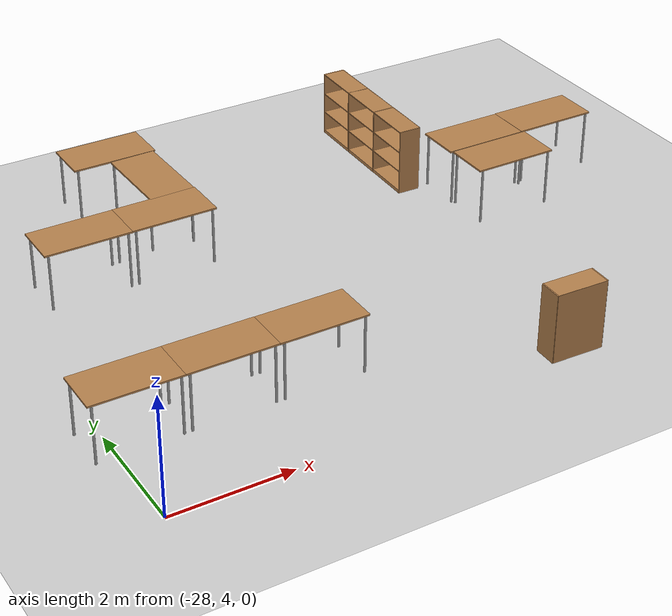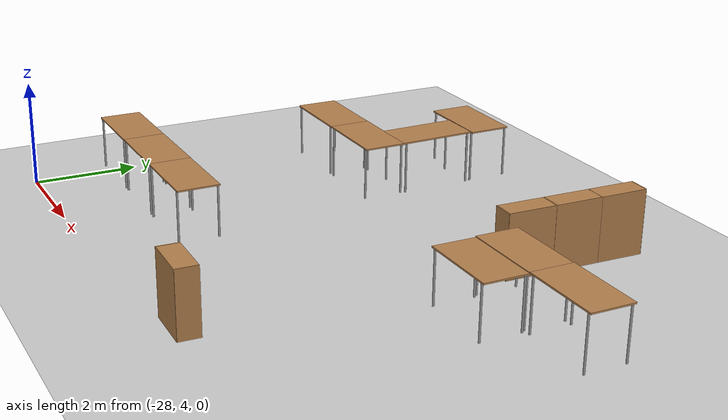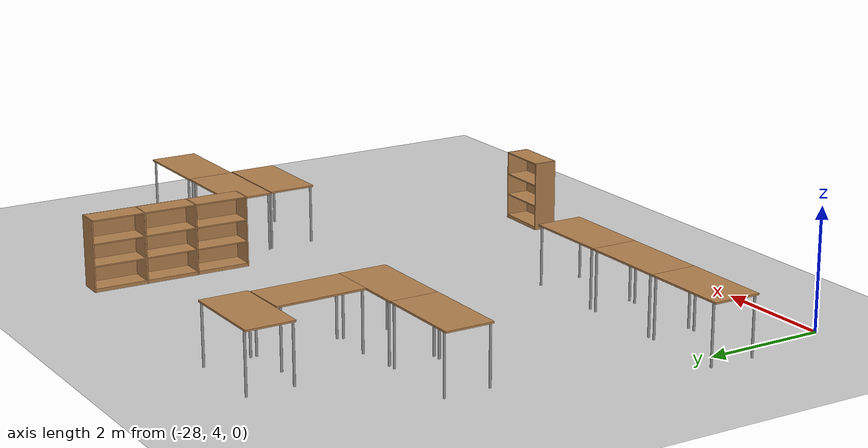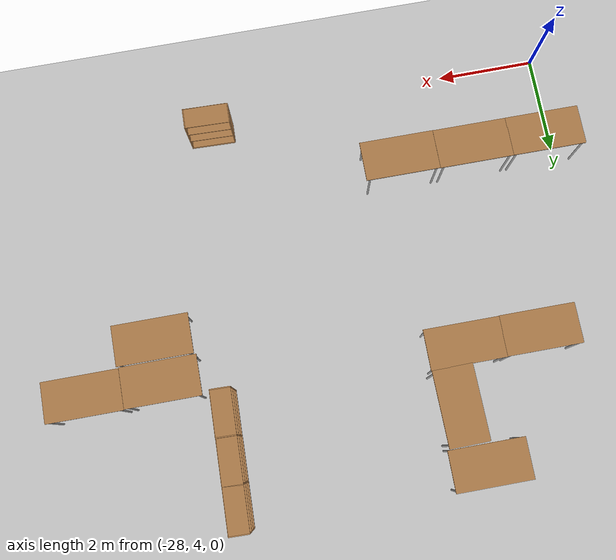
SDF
<sdf version="1.7">
 <world name="default">
  <model name="ground_plane">
   <static>1</static>
   <link name="link">
    <collision name="collision">
     <geometry><plane><normal>0 0 1</normal><size>100 100</size></plane></geometry>
     <surface>
      <contact><collide_bitmask>65535</collide_bitmask></contact>
      <friction><ode><mu>100</mu><mu2>50</mu2></ode></friction>
     </surface>
    </collision>
    <visual name="visual">
     <cast_shadows>0</cast_shadows>
     <geometry><plane><normal>0 0 1</normal><size>100 100</size></plane></geometry>
     <material>
      <script><uri>file://media/materials/scripts/gazebo.material</uri><name>Gazebo/Grey</name></script>
     </material>
    </visual>
   </link>
  </model>
  <model name="table">
   <static>1</static>
   <link name="link">
    <collision name="surface">
     <pose>0 0 1 0 -0 0</pose>
     <geometry><box><size>1.5 0.8 0.03</size></box></geometry>
     <surface><friction><ode><mu>0.6</mu><mu2>0.6</mu2></ode></friction></surface>
    </collision>
    <visual name="visual1">
     <pose>0 0 1 0 -0 0</pose>
     <geometry><box><size>1.5 0.8 0.03</size></box></geometry>
     <material>
      <script><uri>file://media/materials/scripts/gazebo.material</uri><name>Gazebo/Wood</name></script>
     </material>
    </visual>
    <collision name="front_left_leg">
     <pose>0.68 0.38 0.5 0 -0 0</pose>
     <geometry><cylinder><radius>0.02</radius><length>1</length></cylinder></geometry>
    </collision>
    <visual name="front_left_leg">
     <pose>0.68 0.38 0.5 0 -0 0</pose>
     <geometry><cylinder><radius>0.02</radius><length>1</length></cylinder></geometry>
     <material>
      <script><uri>file://media/materials/scripts/gazebo.material</uri><name>Gazebo/Grey</name></script>
     </material>
    </visual>
    <collision name="front_right_leg">
     <pose>0.68 -0.38 0.5 0 -0 0</pose>
     <geometry><cylinder><radius>0.02</radius><length>1</length></cylinder></geometry>
    </collision>
    <visual name="front_right_leg">
     <pose>0.68 -0.38 0.5 0 -0 0</pose>
     <geometry><cylinder><radius>0.02</radius><length>1</length></cylinder></geometry>
     <material>
      <script><uri>file://media/materials/scripts/gazebo.material</uri><name>Gazebo/Grey</name></script>
     </material>
    </visual>
    <collision name="back_right_leg">
     <pose>-0.68 -0.38 0.5 0 -0 0</pose>
     <geometry><cylinder><radius>0.02</radius><length>1</length></cylinder></geometry>
    </collision>
    <visual name="back_right_leg">
     <pose>-0.68 -0.38 0.5 0 -0 0</pose>
     <geometry><cylinder><radius>0.02</radius><length>1</length></cylinder></geometry>
     <material>
      <script><uri>file://media/materials/scripts/gazebo.material</uri><name>Gazebo/Grey</name></script>
     </material>
    </visual>
    <collision name="back_left_leg">
     <pose>-0.68 0.38 0.5 0 -0 0</pose>
     <geometry><cylinder><radius>0.02</radius><length>1</length></cylinder></geometry>
    </collision>
    <visual name="back_left_leg">
     <pose>-0.68 0.38 0.5 0 -0 0</pose>
     <geometry><cylinder><radius>0.02</radius><length>1</length></cylinder></geometry>
     <material>
      <script><uri>file://media/materials/scripts/gazebo.material</uri><name>Gazebo/Grey</name></script>
     </material>
    </visual>
   </link>
   <pose>-19.2474 8.66386 0 0 -0 0</pose>
  </model>
  <model name="table_0">
   <static>1</static>
   <link name="link">
    <collision name="surface">
     <pose>0 0 1 0 -0 0</pose>
     <geometry><box><size>1.5 0.8 0.03</size></box></geometry>
     <surface><friction><ode><mu>0.6</mu><mu2>0.6</mu2></ode></friction></surface>
    </collision>
    <visual name="visual1">
     <pose>0 0 1 0 -0 0</pose>
     <geometry><box><size>1.5 0.8 0.03</size></box></geometry>
     <material>
      <script><uri>file://media/materials/scripts/gazebo.material</uri><name>Gazebo/Wood</name></script>
     </material>
    </visual>
    <collision name="front_left_leg">
     <pose>0.68 0.38 0.5 0 -0 0</pose>
     <geometry><cylinder><radius>0.02</radius><length>1</length></cylinder></geometry>
    </collision>
    <visual name="front_left_leg">
     <pose>0.68 0.38 0.5 0 -0 0</pose>
     <geometry><cylinder><radius>0.02</radius><length>1</length></cylinder></geometry>
     <material>
      <script><uri>file://media/materials/scripts/gazebo.material</uri><name>Gazebo/Grey</name></script>
     </material>
    </visual>
    <collision name="front_right_leg">
     <pose>0.68 -0.38 0.5 0 -0 0</pose>
     <geometry><cylinder><radius>0.02</radius><length>1</length></cylinder></geometry>
    </collision>
    <visual name="front_right_leg">
     <pose>0.68 -0.38 0.5 0 -0 0</pose>
     <geometry><cylinder><radius>0.02</radius><length>1</length></cylinder></geometry>
     <material>
      <script><uri>file://media/materials/scripts/gazebo.material</uri><name>Gazebo/Grey</name></script>
     </material>
    </visual>
    <collision name="back_right_leg">
     <pose>-0.68 -0.38 0.5 0 -0 0</pose>
     <geometry><cylinder><radius>0.02</radius><length>1</length></cylinder></geometry>
    </collision>
    <visual name="back_right_leg">
     <pose>-0.68 -0.38 0.5 0 -0 0</pose>
     <geometry><cylinder><radius>0.02</radius><length>1</length></cylinder></geometry>
     <material>
      <script><uri>file://media/materials/scripts/gazebo.material</uri><name>Gazebo/Grey</name></script>
     </material>
    </visual>
    <collision name="back_left_leg">
     <pose>-0.68 0.38 0.5 0 -0 0</pose>
     <geometry><cylinder><radius>0.02</radius><length>1</length></cylinder></geometry>
    </collision>
    <visual name="back_left_leg">
     <pose>-0.68 0.38 0.5 0 -0 0</pose>
     <geometry><cylinder><radius>0.02</radius><length>1</length></cylinder></geometry>
     <material>
      <script><uri>file://media/materials/scripts/gazebo.material</uri><name>Gazebo/Grey</name></script>
     </material>
    </visual>
   </link>
   <pose>-19.2889 9.4847 -0.00083 0 -0 0</pose>
  </model>
  <model name="table_0_clone_4">
   <static>1</static>
   <link name="link">
    <collision name="surface">
     <pose>0 0 1 0 -0 0</pose>
     <geometry><box><size>1.5 0.8 0.03</size></box></geometry>
     <surface><friction><ode><mu>0.6</mu><mu2>0.6</mu2></ode></friction></surface>
    </collision>
    <visual name="visual1">
     <pose>0 0 1 0 -0 0</pose>
     <geometry><box><size>1.5 0.8 0.03</size></box></geometry>
     <material>
      <script><uri>file://media/materials/scripts/gazebo.material</uri><name>Gazebo/Wood</name></script>
     </material>
    </visual>
    <collision name="front_left_leg">
     <pose>0.68 0.38 0.5 0 -0 0</pose>
     <geometry><cylinder><radius>0.02</radius><length>1</length></cylinder></geometry>
    </collision>
    <visual name="front_left_leg">
     <pose>0.68 0.38 0.5 0 -0 0</pose>
     <geometry><cylinder><radius>0.02</radius><length>1</length></cylinder></geometry>
     <material>
      <script><uri>file://media/materials/scripts/gazebo.material</uri><name>Gazebo/Grey</name></script>
     </material>
    </visual>
    <collision name="front_right_leg">
     <pose>0.68 -0.38 0.5 0 -0 0</pose>
     <geometry><cylinder><radius>0.02</radius><length>1</length></cylinder></geometry>
    </collision>
    <visual name="front_right_leg">
     <pose>0.68 -0.38 0.5 0 -0 0</pose>
     <geometry><cylinder><radius>0.02</radius><length>1</length></cylinder></geometry>
     <material>
      <script><uri>file://media/materials/scripts/gazebo.material</uri><name>Gazebo/Grey</name></script>
     </material>
    </visual>
    <collision name="back_right_leg">
     <pose>-0.68 -0.38 0.5 0 -0 0</pose>
     <geometry><cylinder><radius>0.02</radius><length>1</length></cylinder></geometry>
    </collision>
    <visual name="back_right_leg">
     <pose>-0.68 -0.38 0.5 0 -0 0</pose>
     <geometry><cylinder><radius>0.02</radius><length>1</length></cylinder></geometry>
     <material>
      <script><uri>file://media/materials/scripts/gazebo.material</uri><name>Gazebo/Grey</name></script>
     </material>
    </visual>
    <collision name="back_left_leg">
     <pose>-0.68 0.38 0.5 0 -0 0</pose>
     <geometry><cylinder><radius>0.02</radius><length>1</length></cylinder></geometry>
    </collision>
    <visual name="back_left_leg">
     <pose>-0.68 0.38 0.5 0 -0 0</pose>
     <geometry><cylinder><radius>0.02</radius><length>1</length></cylinder></geometry>
     <material>
      <script><uri>file://media/materials/scripts/gazebo.material</uri><name>Gazebo/Grey</name></script>
     </material>
    </visual>
   </link>
   <pose>-17.7882 9.49595 0 0 -0 0</pose>
  </model>
  <model name="table_2">
   <static>1</static>
   <link name="link">
    <collision name="surface">
     <pose>0 0 1 0 -0 0</pose>
     <geometry><box><size>1.5 0.8 0.03</size></box></geometry>
     <surface><friction><ode><mu>0.6</mu><mu2>0.6</mu2></ode></friction></surface>
    </collision>
    <visual name="visual1">
     <pose>0 0 1 0 -0 0</pose>
     <geometry><box><size>1.5 0.8 0.03</size></box></geometry>
     <material>
      <script><uri>file://media/materials/scripts/gazebo.material</uri><name>Gazebo/Wood</name></script>
     </material>
    </visual>
    <collision name="front_left_leg">
     <pose>0.68 0.38 0.5 0 -0 0</pose>
     <geometry><cylinder><radius>0.02</radius><length>1</length></cylinder></geometry>
    </collision>
    <visual name="front_left_leg">
     <pose>0.68 0.38 0.5 0 -0 0</pose>
     <geometry><cylinder><radius>0.02</radius><length>1</length></cylinder></geometry>
     <material>
      <script><uri>file://media/materials/scripts/gazebo.material</uri><name>Gazebo/Grey</name></script>
     </material>
    </visual>
    <collision name="front_right_leg">
     <pose>0.68 -0.38 0.5 0 -0 0</pose>
     <geometry><cylinder><radius>0.02</radius><length>1</length></cylinder></geometry>
    </collision>
    <visual name="front_right_leg">
     <pose>0.68 -0.38 0.5 0 -0 0</pose>
     <geometry><cylinder><radius>0.02</radius><length>1</length></cylinder></geometry>
     <material>
      <script><uri>file://media/materials/scripts/gazebo.material</uri><name>Gazebo/Grey</name></script>
     </material>
    </visual>
    <collision name="back_right_leg">
     <pose>-0.68 -0.38 0.5 0 -0 0</pose>
     <geometry><cylinder><radius>0.02</radius><length>1</length></cylinder></geometry>
    </collision>
    <visual name="back_right_leg">
     <pose>-0.68 -0.38 0.5 0 -0 0</pose>
     <geometry><cylinder><radius>0.02</radius><length>1</length></cylinder></geometry>
     <material>
      <script><uri>file://media/materials/scripts/gazebo.material</uri><name>Gazebo/Grey</name></script>
     </material>
    </visual>
    <collision name="back_left_leg">
     <pose>-0.68 0.38 0.5 0 -0 0</pose>
     <geometry><cylinder><radius>0.02</radius><length>1</length></cylinder></geometry>
    </collision>
    <visual name="back_left_leg">
     <pose>-0.68 0.38 0.5 0 -0 0</pose>
     <geometry><cylinder><radius>0.02</radius><length>1</length></cylinder></geometry>
     <material>
      <script><uri>file://media/materials/scripts/gazebo.material</uri><name>Gazebo/Grey</name></script>
     </material>
    </visual>
   </link>
   <pose>-26.6345 9.80298 0 0 -0 0</pose>
  </model>
  <model name="table_2_clone">
   <static>1</static>
   <link name="link">
    <collision name="surface">
     <pose>0 0 1 0 -0 0</pose>
     <geometry><box><size>1.5 0.8 0.03</size></box></geometry>
     <surface><friction><ode><mu>0.6</mu><mu2>0.6</mu2></ode></friction></surface>
    </collision>
    <visual name="visual1">
     <pose>0 0 1 0 -0 0</pose>
     <geometry><box><size>1.5 0.8 0.03</size></box></geometry>
     <material>
      <script><uri>file://media/materials/scripts/gazebo.material</uri><name>Gazebo/Wood</name></script>
     </material>
    </visual>
    <collision name="front_left_leg">
     <pose>0.68 0.38 0.5 0 -0 0</pose>
     <geometry><cylinder><radius>0.02</radius><length>1</length></cylinder></geometry>
    </collision>
    <visual name="front_left_leg">
     <pose>0.68 0.38 0.5 0 -0 0</pose>
     <geometry><cylinder><radius>0.02</radius><length>1</length></cylinder></geometry>
     <material>
      <script><uri>file://media/materials/scripts/gazebo.material</uri><name>Gazebo/Grey</name></script>
     </material>
    </visual>
    <collision name="front_right_leg">
     <pose>0.68 -0.38 0.5 0 -0 0</pose>
     <geometry><cylinder><radius>0.02</radius><length>1</length></cylinder></geometry>
    </collision>
    <visual name="front_right_leg">
     <pose>0.68 -0.38 0.5 0 -0 0</pose>
     <geometry><cylinder><radius>0.02</radius><length>1</length></cylinder></geometry>
     <material>
      <script><uri>file://media/materials/scripts/gazebo.material</uri><name>Gazebo/Grey</name></script>
     </material>
    </visual>
    <collision name="back_right_leg">
     <pose>-0.68 -0.38 0.5 0 -0 0</pose>
     <geometry><cylinder><radius>0.02</radius><length>1</length></cylinder></geometry>
    </collision>
    <visual name="back_right_leg">
     <pose>-0.68 -0.38 0.5 0 -0 0</pose>
     <geometry><cylinder><radius>0.02</radius><length>1</length></cylinder></geometry>
     <material>
      <script><uri>file://media/materials/scripts/gazebo.material</uri><name>Gazebo/Grey</name></script>
     </material>
    </visual>
    <collision name="back_left_leg">
     <pose>-0.68 0.38 0.5 0 -0 0</pose>
     <geometry><cylinder><radius>0.02</radius><length>1</length></cylinder></geometry>
    </collision>
    <visual name="back_left_leg">
     <pose>-0.68 0.38 0.5 0 -0 0</pose>
     <geometry><cylinder><radius>0.02</radius><length>1</length></cylinder></geometry>
     <material>
      <script><uri>file://media/materials/scripts/gazebo.material</uri><name>Gazebo/Grey</name></script>
     </material>
    </visual>
   </link>
   <pose>-25.1404 9.80911 0 0 -0 0</pose>
  </model>
  <model name="table_2_clone_0">
   <static>1</static>
   <link name="link">
    <collision name="surface">
     <pose>0 0 1 0 -0 0</pose>
     <geometry><box><size>1.5 0.8 0.03</size></box></geometry>
     <surface><friction><ode><mu>0.6</mu><mu2>0.6</mu2></ode></friction></surface>
    </collision>
    <visual name="visual1">
     <pose>0 0 1 0 -0 0</pose>
     <geometry><box><size>1.5 0.8 0.03</size></box></geometry>
     <material>
      <script><uri>file://media/materials/scripts/gazebo.material</uri><name>Gazebo/Wood</name></script>
     </material>
    </visual>
    <collision name="front_left_leg">
     <pose>0.68 0.38 0.5 0 -0 0</pose>
     <geometry><cylinder><radius>0.02</radius><length>1</length></cylinder></geometry>
    </collision>
    <visual name="front_left_leg">
     <pose>0.68 0.38 0.5 0 -0 0</pose>
     <geometry><cylinder><radius>0.02</radius><length>1</length></cylinder></geometry>
     <material>
      <script><uri>file://media/materials/scripts/gazebo.material</uri><name>Gazebo/Grey</name></script>
     </material>
    </visual>
    <collision name="front_right_leg">
     <pose>0.68 -0.38 0.5 0 -0 0</pose>
     <geometry><cylinder><radius>0.02</radius><length>1</length></cylinder></geometry>
    </collision>
    <visual name="front_right_leg">
     <pose>0.68 -0.38 0.5 0 -0 0</pose>
     <geometry><cylinder><radius>0.02</radius><length>1</length></cylinder></geometry>
     <material>
      <script><uri>file://media/materials/scripts/gazebo.material</uri><name>Gazebo/Grey</name></script>
     </material>
    </visual>
    <collision name="back_right_leg">
     <pose>-0.68 -0.38 0.5 0 -0 0</pose>
     <geometry><cylinder><radius>0.02</radius><length>1</length></cylinder></geometry>
    </collision>
    <visual name="back_right_leg">
     <pose>-0.68 -0.38 0.5 0 -0 0</pose>
     <geometry><cylinder><radius>0.02</radius><length>1</length></cylinder></geometry>
     <material>
      <script><uri>file://media/materials/scripts/gazebo.material</uri><name>Gazebo/Grey</name></script>
     </material>
    </visual>
    <collision name="back_left_leg">
     <pose>-0.68 0.38 0.5 0 -0 0</pose>
     <geometry><cylinder><radius>0.02</radius><length>1</length></cylinder></geometry>
    </collision>
    <visual name="back_left_leg">
     <pose>-0.68 0.38 0.5 0 -0 0</pose>
     <geometry><cylinder><radius>0.02</radius><length>1</length></cylinder></geometry>
     <material>
      <script><uri>file://media/materials/scripts/gazebo.material</uri><name>Gazebo/Grey</name></script>
     </material>
    </visual>
   </link>
   <pose>-24.8153 10.9521 0 0 0 -1.55215</pose>
  </model>
  <model name="table_2_clone_1">
   <static>1</static>
   <link name="link">
    <collision name="surface">
     <pose>0 0 1 0 -0 0</pose>
     <geometry><box><size>1.5 0.8 0.03</size></box></geometry>
     <surface><friction><ode><mu>0.6</mu><mu2>0.6</mu2></ode></friction></surface>
    </collision>
    <visual name="visual1">
     <pose>0 0 1 0 -0 0</pose>
     <geometry><box><size>1.5 0.8 0.03</size></box></geometry>
     <material>
      <script><uri>file://media/materials/scripts/gazebo.material</uri><name>Gazebo/Wood</name></script>
     </material>
    </visual>
    <collision name="front_left_leg">
     <pose>0.68 0.38 0.5 0 -0 0</pose>
     <geometry><cylinder><radius>0.02</radius><length>1</length></cylinder></geometry>
    </collision>
    <visual name="front_left_leg">
     <pose>0.68 0.38 0.5 0 -0 0</pose>
     <geometry><cylinder><radius>0.02</radius><length>1</length></cylinder></geometry>
     <material>
      <script><uri>file://media/materials/scripts/gazebo.material</uri><name>Gazebo/Grey</name></script>
     </material>
    </visual>
    <collision name="front_right_leg">
     <pose>0.68 -0.38 0.5 0 -0 0</pose>
     <geometry><cylinder><radius>0.02</radius><length>1</length></cylinder></geometry>
    </collision>
    <visual name="front_right_leg">
     <pose>0.68 -0.38 0.5 0 -0 0</pose>
     <geometry><cylinder><radius>0.02</radius><length>1</length></cylinder></geometry>
     <material>
      <script><uri>file://media/materials/scripts/gazebo.material</uri><name>Gazebo/Grey</name></script>
     </material>
    </visual>
    <collision name="back_right_leg">
     <pose>-0.68 -0.38 0.5 0 -0 0</pose>
     <geometry><cylinder><radius>0.02</radius><length>1</length></cylinder></geometry>
    </collision>
    <visual name="back_right_leg">
     <pose>-0.68 -0.38 0.5 0 -0 0</pose>
     <geometry><cylinder><radius>0.02</radius><length>1</length></cylinder></geometry>
     <material>
      <script><uri>file://media/materials/scripts/gazebo.material</uri><name>Gazebo/Grey</name></script>
     </material>
    </visual>
    <collision name="back_left_leg">
     <pose>-0.68 0.38 0.5 0 -0 0</pose>
     <geometry><cylinder><radius>0.02</radius><length>1</length></cylinder></geometry>
    </collision>
    <visual name="back_left_leg">
     <pose>-0.68 0.38 0.5 0 -0 0</pose>
     <geometry><cylinder><radius>0.02</radius><length>1</length></cylinder></geometry>
     <material>
      <script><uri>file://media/materials/scripts/gazebo.material</uri><name>Gazebo/Grey</name></script>
     </material>
    </visual>
   </link>
   <pose>-25.1335 12.1209 0 0 -0 0</pose>
  </model>
  <model name="table_3">
   <static>1</static>
   <link name="link">
    <collision name="surface">
     <pose>0 0 1 0 -0 0</pose>
     <geometry><box><size>1.5 0.8 0.03</size></box></geometry>
     <surface><friction><ode><mu>0.6</mu><mu2>0.6</mu2></ode></friction></surface>
    </collision>
    <visual name="visual1">
     <pose>0 0 1 0 -0 0</pose>
     <geometry><box><size>1.5 0.8 0.03</size></box></geometry>
     <material>
      <script><uri>file://media/materials/scripts/gazebo.material</uri><name>Gazebo/Wood</name></script>
     </material>
    </visual>
    <collision name="front_left_leg">
     <pose>0.68 0.38 0.5 0 -0 0</pose>
     <geometry><cylinder><radius>0.02</radius><length>1</length></cylinder></geometry>
    </collision>
    <visual name="front_left_leg">
     <pose>0.68 0.38 0.5 0 -0 0</pose>
     <geometry><cylinder><radius>0.02</radius><length>1</length></cylinder></geometry>
     <material>
      <script><uri>file://media/materials/scripts/gazebo.material</uri><name>Gazebo/Grey</name></script>
     </material>
    </visual>
    <collision name="front_right_leg">
     <pose>0.68 -0.38 0.5 0 -0 0</pose>
     <geometry><cylinder><radius>0.02</radius><length>1</length></cylinder></geometry>
    </collision>
    <visual name="front_right_leg">
     <pose>0.68 -0.38 0.5 0 -0 0</pose>
     <geometry><cylinder><radius>0.02</radius><length>1</length></cylinder></geometry>
     <material>
      <script><uri>file://media/materials/scripts/gazebo.material</uri><name>Gazebo/Grey</name></script>
     </material>
    </visual>
    <collision name="back_right_leg">
     <pose>-0.68 -0.38 0.5 0 -0 0</pose>
     <geometry><cylinder><radius>0.02</radius><length>1</length></cylinder></geometry>
    </collision>
    <visual name="back_right_leg">
     <pose>-0.68 -0.38 0.5 0 -0 0</pose>
     <geometry><cylinder><radius>0.02</radius><length>1</length></cylinder></geometry>
     <material>
      <script><uri>file://media/materials/scripts/gazebo.material</uri><name>Gazebo/Grey</name></script>
     </material>
    </visual>
    <collision name="back_left_leg">
     <pose>-0.68 0.38 0.5 0 -0 0</pose>
     <geometry><cylinder><radius>0.02</radius><length>1</length></cylinder></geometry>
    </collision>
    <visual name="back_left_leg">
     <pose>-0.68 0.38 0.5 0 -0 0</pose>
     <geometry><cylinder><radius>0.02</radius><length>1</length></cylinder></geometry>
     <material>
      <script><uri>file://media/materials/scripts/gazebo.material</uri><name>Gazebo/Grey</name></script>
     </material>
    </visual>
   </link>
   <pose>-27.6413 5.8837 0 0 -0 0</pose>
  </model>
  <model name="table_4">
   <static>1</static>
   <link name="link">
    <collision name="surface">
     <pose>0 0 1 0 -0 0</pose>
     <geometry><box><size>1.5 0.8 0.03</size></box></geometry>
     <surface><friction><ode><mu>0.6</mu><mu2>0.6</mu2></ode></friction></surface>
    </collision>
    <visual name="visual1">
     <pose>0 0 1 0 -0 0</pose>
     <geometry><box><size>1.5 0.8 0.03</size></box></geometry>
     <material>
      <script><uri>file://media/materials/scripts/gazebo.material</uri><name>Gazebo/Wood</name></script>
     </material>
    </visual>
    <collision name="front_left_leg">
     <pose>0.68 0.38 0.5 0 -0 0</pose>
     <geometry><cylinder><radius>0.02</radius><length>1</length></cylinder></geometry>
    </collision>
    <visual name="front_left_leg">
     <pose>0.68 0.38 0.5 0 -0 0</pose>
     <geometry><cylinder><radius>0.02</radius><length>1</length></cylinder></geometry>
     <material>
      <script><uri>file://media/materials/scripts/gazebo.material</uri><name>Gazebo/Grey</name></script>
     </material>
    </visual>
    <collision name="front_right_leg">
     <pose>0.68 -0.38 0.5 0 -0 0</pose>
     <geometry><cylinder><radius>0.02</radius><length>1</length></cylinder></geometry>
    </collision>
    <visual name="front_right_leg">
     <pose>0.68 -0.38 0.5 0 -0 0</pose>
     <geometry><cylinder><radius>0.02</radius><length>1</length></cylinder></geometry>
     <material>
      <script><uri>file://media/materials/scripts/gazebo.material</uri><name>Gazebo/Grey</name></script>
     </material>
    </visual>
    <collision name="back_right_leg">
     <pose>-0.68 -0.38 0.5 0 -0 0</pose>
     <geometry><cylinder><radius>0.02</radius><length>1</length></cylinder></geometry>
    </collision>
    <visual name="back_right_leg">
     <pose>-0.68 -0.38 0.5 0 -0 0</pose>
     <geometry><cylinder><radius>0.02</radius><length>1</length></cylinder></geometry>
     <material>
      <script><uri>file://media/materials/scripts/gazebo.material</uri><name>Gazebo/Grey</name></script>
     </material>
    </visual>
    <collision name="back_left_leg">
     <pose>-0.68 0.38 0.5 0 -0 0</pose>
     <geometry><cylinder><radius>0.02</radius><length>1</length></cylinder></geometry>
    </collision>
    <visual name="back_left_leg">
     <pose>-0.68 0.38 0.5 0 -0 0</pose>
     <geometry><cylinder><radius>0.02</radius><length>1</length></cylinder></geometry>
     <material>
      <script><uri>file://media/materials/scripts/gazebo.material</uri><name>Gazebo/Grey</name></script>
     </material>
    </visual>
   </link>
   <pose>-26.1516 5.88507 0 0 -0 0</pose>
  </model>
  <model name="table_5">
   <static>1</static>
   <link name="link">
    <collision name="surface">
     <pose>0 0 1 0 -0 0</pose>
     <geometry><box><size>1.5 0.8 0.03</size></box></geometry>
     <surface><friction><ode><mu>0.6</mu><mu2>0.6</mu2></ode></friction></surface>
    </collision>
    <visual name="visual1">
     <pose>0 0 1 0 -0 0</pose>
     <geometry><box><size>1.5 0.8 0.03</size></box></geometry>
     <material>
      <script><uri>file://media/materials/scripts/gazebo.material</uri><name>Gazebo/Wood</name></script>
     </material>
    </visual>
    <collision name="front_left_leg">
     <pose>0.68 0.38 0.5 0 -0 0</pose>
     <geometry><cylinder><radius>0.02</radius><length>1</length></cylinder></geometry>
    </collision>
    <visual name="front_left_leg">
     <pose>0.68 0.38 0.5 0 -0 0</pose>
     <geometry><cylinder><radius>0.02</radius><length>1</length></cylinder></geometry>
     <material>
      <script><uri>file://media/materials/scripts/gazebo.material</uri><name>Gazebo/Grey</name></script>
     </material>
    </visual>
    <collision name="front_right_leg">
     <pose>0.68 -0.38 0.5 0 -0 0</pose>
     <geometry><cylinder><radius>0.02</radius><length>1</length></cylinder></geometry>
    </collision>
    <visual name="front_right_leg">
     <pose>0.68 -0.38 0.5 0 -0 0</pose>
     <geometry><cylinder><radius>0.02</radius><length>1</length></cylinder></geometry>
     <material>
      <script><uri>file://media/materials/scripts/gazebo.material</uri><name>Gazebo/Grey</name></script>
     </material>
    </visual>
    <collision name="back_right_leg">
     <pose>-0.68 -0.38 0.5 0 -0 0</pose>
     <geometry><cylinder><radius>0.02</radius><length>1</length></cylinder></geometry>
    </collision>
    <visual name="back_right_leg">
     <pose>-0.68 -0.38 0.5 0 -0 0</pose>
     <geometry><cylinder><radius>0.02</radius><length>1</length></cylinder></geometry>
     <material>
      <script><uri>file://media/materials/scripts/gazebo.material</uri><name>Gazebo/Grey</name></script>
     </material>
    </visual>
    <collision name="back_left_leg">
     <pose>-0.68 0.38 0.5 0 -0 0</pose>
     <geometry><cylinder><radius>0.02</radius><length>1</length></cylinder></geometry>
    </collision>
    <visual name="back_left_leg">
     <pose>-0.68 0.38 0.5 0 -0 0</pose>
     <geometry><cylinder><radius>0.02</radius><length>1</length></cylinder></geometry>
     <material>
      <script><uri>file://media/materials/scripts/gazebo.material</uri><name>Gazebo/Grey</name></script>
     </material>
    </visual>
   </link>
   <pose>-24.6509 5.88052 0 0 -0 0</pose>
  </model>
  <model name="bookshelf_clone_7">
   <static>1</static>
   <link name="link">
    <inertial><mass>1</mass></inertial>
    <collision name="back">
     <pose>0 0.005 0.6 0 -0 0</pose>
     <geometry><box><size>0.9 0.01 1.2</size></box></geometry>
    </collision>
    <visual name="visual1">
     <pose>0 0.005 0.6 0 -0 0</pose>
     <geometry><box><size>0.9 0.01 1.2</size></box></geometry>
     <material>
      <script><uri>file://media/materials/scripts/gazebo.material</uri><name>Gazebo/Wood</name></script>
     </material>
    </visual>
    <collision name="left_side">
     <pose>0.45 -0.195 0.6 0 -0 0</pose>
     <geometry><box><size>0.02 0.4 1.2</size></box></geometry>
    </collision>
    <visual name="visual2">
     <pose>0.45 -0.195 0.6 0 -0 0</pose>
     <geometry><box><size>0.02 0.4 1.2</size></box></geometry>
     <material>
      <script><uri>file://media/materials/scripts/gazebo.material</uri><name>Gazebo/Wood</name></script>
     </material>
    </visual>
    <collision name="right_side">
     <pose>-0.45 -0.195 0.6 0 -0 0</pose>
     <geometry><box><size>0.02 0.4 1.2</size></box></geometry>
    </collision>
    <visual name="visual3">
     <pose>-0.45 -0.195 0.6 0 -0 0</pose>
     <geometry><box><size>0.02 0.4 1.2</size></box></geometry>
     <material>
      <script><uri>file://media/materials/scripts/gazebo.material</uri><name>Gazebo/Wood</name></script>
     </material>
    </visual>
    <collision name="bottom">
     <pose>0 -0.195 0.03 0 -0 0</pose>
     <geometry><box><size>0.88 0.4 0.06</size></box></geometry>
    </collision>
    <visual name="visual4">
     <pose>0 -0.195 0.03 0 -0 0</pose>
     <geometry><box><size>0.88 0.4 0.06</size></box></geometry>
     <material>
      <script><uri>file://media/materials/scripts/gazebo.material</uri><name>Gazebo/Wood</name></script>
     </material>
    </visual>
    <collision name="top">
     <pose>0 -0.195 1.19 0 -0 0</pose>
     <geometry><box><size>0.88 0.4 0.02</size></box></geometry>
    </collision>
    <visual name="visual5">
     <pose>0 -0.195 1.19 0 -0 0</pose>
     <geometry><box><size>0.88 0.4 0.02</size></box></geometry>
     <material>
      <script><uri>file://media/materials/scripts/gazebo.material</uri><name>Gazebo/Wood</name></script>
     </material>
    </visual>
    <collision name="low_shelf">
     <pose>0 -0.195 0.43 0 -0 0</pose>
     <geometry><box><size>0.88 0.4 0.02</size></box></geometry>
    </collision>
    <visual name="visual6">
     <pose>0 -0.195 0.43 0 -0 0</pose>
     <geometry><box><size>0.88 0.4 0.02</size></box></geometry>
     <material>
      <script><uri>file://media/materials/scripts/gazebo.material</uri><name>Gazebo/Wood</name></script>
     </material>
    </visual>
    <collision name="high_shelf">
     <pose>0 -0.195 0.8 0 -0 0</pose>
     <geometry><box><size>0.88 0.4 0.02</size></box></geometry>
    </collision>
    <visual name="visual7">
     <pose>0 -0.195 0.8 0 -0 0</pose>
     <geometry><box><size>0.88 0.4 0.02</size></box></geometry>
     <material>
      <script><uri>file://media/materials/scripts/gazebo.material</uri><name>Gazebo/Wood</name></script>
     </material>
    </visual>
   </link>
   <pose>-20.1504 12.059 0 0 0 -1.59679</pose>
  </model>
  <model name="bookshelf_clone_7_clone">
   <static>1</static>
   <link name="link">
    <inertial><mass>1</mass></inertial>
    <collision name="back">
     <pose>0 0.005 0.6 0 -0 0</pose>
     <geometry><box><size>0.9 0.01 1.2</size></box></geometry>
    </collision>
    <visual name="visual1">
     <pose>0 0.005 0.6 0 -0 0</pose>
     <geometry><box><size>0.9 0.01 1.2</size></box></geometry>
     <material>
      <script><uri>file://media/materials/scripts/gazebo.material</uri><name>Gazebo/Wood</name></script>
     </material>
    </visual>
    <collision name="left_side">
     <pose>0.45 -0.195 0.6 0 -0 0</pose>
     <geometry><box><size>0.02 0.4 1.2</size></box></geometry>
    </collision>
    <visual name="visual2">
     <pose>0.45 -0.195 0.6 0 -0 0</pose>
     <geometry><box><size>0.02 0.4 1.2</size></box></geometry>
     <material>
      <script><uri>file://media/materials/scripts/gazebo.material</uri><name>Gazebo/Wood</name></script>
     </material>
    </visual>
    <collision name="right_side">
     <pose>-0.45 -0.195 0.6 0 -0 0</pose>
     <geometry><box><size>0.02 0.4 1.2</size></box></geometry>
    </collision>
    <visual name="visual3">
     <pose>-0.45 -0.195 0.6 0 -0 0</pose>
     <geometry><box><size>0.02 0.4 1.2</size></box></geometry>
     <material>
      <script><uri>file://media/materials/scripts/gazebo.material</uri><name>Gazebo/Wood</name></script>
     </material>
    </visual>
    <collision name="bottom">
     <pose>0 -0.195 0.03 0 -0 0</pose>
     <geometry><box><size>0.88 0.4 0.06</size></box></geometry>
    </collision>
    <visual name="visual4">
     <pose>0 -0.195 0.03 0 -0 0</pose>
     <geometry><box><size>0.88 0.4 0.06</size></box></geometry>
     <material>
      <script><uri>file://media/materials/scripts/gazebo.material</uri><name>Gazebo/Wood</name></script>
     </material>
    </visual>
    <collision name="top">
     <pose>0 -0.195 1.19 0 -0 0</pose>
     <geometry><box><size>0.88 0.4 0.02</size></box></geometry>
    </collision>
    <visual name="visual5">
     <pose>0 -0.195 1.19 0 -0 0</pose>
     <geometry><box><size>0.88 0.4 0.02</size></box></geometry>
     <material>
      <script><uri>file://media/materials/scripts/gazebo.material</uri><name>Gazebo/Wood</name></script>
     </material>
    </visual>
    <collision name="low_shelf">
     <pose>0 -0.195 0.43 0 -0 0</pose>
     <geometry><box><size>0.88 0.4 0.02</size></box></geometry>
    </collision>
    <visual name="visual6">
     <pose>0 -0.195 0.43 0 -0 0</pose>
     <geometry><box><size>0.88 0.4 0.02</size></box></geometry>
     <material>
      <script><uri>file://media/materials/scripts/gazebo.material</uri><name>Gazebo/Wood</name></script>
     </material>
    </visual>
    <collision name="high_shelf">
     <pose>0 -0.195 0.8 0 -0 0</pose>
     <geometry><box><size>0.88 0.4 0.02</size></box></geometry>
    </collision>
    <visual name="visual7">
     <pose>0 -0.195 0.8 0 -0 0</pose>
     <geometry><box><size>0.88 0.4 0.02</size></box></geometry>
     <material>
      <script><uri>file://media/materials/scripts/gazebo.material</uri><name>Gazebo/Wood</name></script>
     </material>
    </visual>
   </link>
   <pose>-20.1721 11.176 0 0 0 -1.59679</pose>
  </model>
  <model name="bookshelf_clone_7_clone_0">
   <static>1</static>
   <link name="link">
    <inertial><mass>1</mass></inertial>
    <collision name="back">
     <pose>0 0.005 0.6 0 -0 0</pose>
     <geometry><box><size>0.9 0.01 1.2</size></box></geometry>
    </collision>
    <visual name="visual1">
     <pose>0 0.005 0.6 0 -0 0</pose>
     <geometry><box><size>0.9 0.01 1.2</size></box></geometry>
     <material>
      <script><uri>file://media/materials/scripts/gazebo.material</uri><name>Gazebo/Wood</name></script>
     </material>
    </visual>
    <collision name="left_side">
     <pose>0.45 -0.195 0.6 0 -0 0</pose>
     <geometry><box><size>0.02 0.4 1.2</size></box></geometry>
    </collision>
    <visual name="visual2">
     <pose>0.45 -0.195 0.6 0 -0 0</pose>
     <geometry><box><size>0.02 0.4 1.2</size></box></geometry>
     <material>
      <script><uri>file://media/materials/scripts/gazebo.material</uri><name>Gazebo/Wood</name></script>
     </material>
    </visual>
    <collision name="right_side">
     <pose>-0.45 -0.195 0.6 0 -0 0</pose>
     <geometry><box><size>0.02 0.4 1.2</size></box></geometry>
    </collision>
    <visual name="visual3">
     <pose>-0.45 -0.195 0.6 0 -0 0</pose>
     <geometry><box><size>0.02 0.4 1.2</size></box></geometry>
     <material>
      <script><uri>file://media/materials/scripts/gazebo.material</uri><name>Gazebo/Wood</name></script>
     </material>
    </visual>
    <collision name="bottom">
     <pose>0 -0.195 0.03 0 -0 0</pose>
     <geometry><box><size>0.88 0.4 0.06</size></box></geometry>
    </collision>
    <visual name="visual4">
     <pose>0 -0.195 0.03 0 -0 0</pose>
     <geometry><box><size>0.88 0.4 0.06</size></box></geometry>
     <material>
      <script><uri>file://media/materials/scripts/gazebo.material</uri><name>Gazebo/Wood</name></script>
     </material>
    </visual>
    <collision name="top">
     <pose>0 -0.195 1.19 0 -0 0</pose>
     <geometry><box><size>0.88 0.4 0.02</size></box></geometry>
    </collision>
    <visual name="visual5">
     <pose>0 -0.195 1.19 0 -0 0</pose>
     <geometry><box><size>0.88 0.4 0.02</size></box></geometry>
     <material>
      <script><uri>file://media/materials/scripts/gazebo.material</uri><name>Gazebo/Wood</name></script>
     </material>
    </visual>
    <collision name="low_shelf">
     <pose>0 -0.195 0.43 0 -0 0</pose>
     <geometry><box><size>0.88 0.4 0.02</size></box></geometry>
    </collision>
    <visual name="visual6">
     <pose>0 -0.195 0.43 0 -0 0</pose>
     <geometry><box><size>0.88 0.4 0.02</size></box></geometry>
     <material>
      <script><uri>file://media/materials/scripts/gazebo.material</uri><name>Gazebo/Wood</name></script>
     </material>
    </visual>
    <collision name="high_shelf">
     <pose>0 -0.195 0.8 0 -0 0</pose>
     <geometry><box><size>0.88 0.4 0.02</size></box></geometry>
    </collision>
    <visual name="visual7">
     <pose>0 -0.195 0.8 0 -0 0</pose>
     <geometry><box><size>0.88 0.4 0.02</size></box></geometry>
     <material>
      <script><uri>file://media/materials/scripts/gazebo.material</uri><name>Gazebo/Wood</name></script>
     </material>
    </visual>
   </link>
   <pose>-20.1926 10.2709 0 0 0 -1.59679</pose>
  </model>
  <model name="bookshelf_clone_clone">
   <static>1</static>
   <link name="link">
    <inertial><mass>1</mass></inertial>
    <collision name="back">
     <pose>0 0.005 0.6 0 -0 0</pose>
     <geometry><box><size>0.9 0.01 1.2</size></box></geometry>
    </collision>
    <visual name="visual1">
     <pose>0 0.005 0.6 0 -0 0</pose>
     <geometry><box><size>0.9 0.01 1.2</size></box></geometry>
     <material>
      <script><uri>file://media/materials/scripts/gazebo.material</uri><name>Gazebo/Wood</name></script>
     </material>
    </visual>
    <collision name="left_side">
     <pose>0.45 -0.195 0.6 0 -0 0</pose>
     <geometry><box><size>0.02 0.4 1.2</size></box></geometry>
    </collision>
    <visual name="visual2">
     <pose>0.45 -0.195 0.6 0 -0 0</pose>
     <geometry><box><size>0.02 0.4 1.2</size></box></geometry>
     <material>
      <script><uri>file://media/materials/scripts/gazebo.material</uri><name>Gazebo/Wood</name></script>
     </material>
    </visual>
    <collision name="right_side">
     <pose>-0.45 -0.195 0.6 0 -0 0</pose>
     <geometry><box><size>0.02 0.4 1.2</size></box></geometry>
    </collision>
    <visual name="visual3">
     <pose>-0.45 -0.195 0.6 0 -0 0</pose>
     <geometry><box><size>0.02 0.4 1.2</size></box></geometry>
     <material>
      <script><uri>file://media/materials/scripts/gazebo.material</uri><name>Gazebo/Wood</name></script>
     </material>
    </visual>
    <collision name="bottom">
     <pose>0 -0.195 0.03 0 -0 0</pose>
     <geometry><box><size>0.88 0.4 0.06</size></box></geometry>
    </collision>
    <visual name="visual4">
     <pose>0 -0.195 0.03 0 -0 0</pose>
     <geometry><box><size>0.88 0.4 0.06</size></box></geometry>
     <material>
      <script><uri>file://media/materials/scripts/gazebo.material</uri><name>Gazebo/Wood</name></script>
     </material>
    </visual>
    <collision name="top">
     <pose>0 -0.195 1.19 0 -0 0</pose>
     <geometry><box><size>0.88 0.4 0.02</size></box></geometry>
    </collision>
    <visual name="visual5">
     <pose>0 -0.195 1.19 0 -0 0</pose>
     <geometry><box><size>0.88 0.4 0.02</size></box></geometry>
     <material>
      <script><uri>file://media/materials/scripts/gazebo.material</uri><name>Gazebo/Wood</name></script>
     </material>
    </visual>
    <collision name="low_shelf">
     <pose>0 -0.195 0.43 0 -0 0</pose>
     <geometry><box><size>0.88 0.4 0.02</size></box></geometry>
    </collision>
    <visual name="visual6">
     <pose>0 -0.195 0.43 0 -0 0</pose>
     <geometry><box><size>0.88 0.4 0.02</size></box></geometry>
     <material>
      <script><uri>file://media/materials/scripts/gazebo.material</uri><name>Gazebo/Wood</name></script>
     </material>
    </visual>
    <collision name="high_shelf">
     <pose>0 -0.195 0.8 0 -0 0</pose>
     <geometry><box><size>0.88 0.4 0.02</size></box></geometry>
    </collision>
    <visual name="visual7">
     <pose>0 -0.195 0.8 0 -0 0</pose>
     <geometry><box><size>0.88 0.4 0.02</size></box></geometry>
     <material>
      <script><uri>file://media/materials/scripts/gazebo.material</uri><name>Gazebo/Wood</name></script>
     </material>
    </visual>
   </link>
   <pose>-20.9764 4.23848 0 0 -0 3.11376</pose>
  </model>
 </world>
</sdf>
